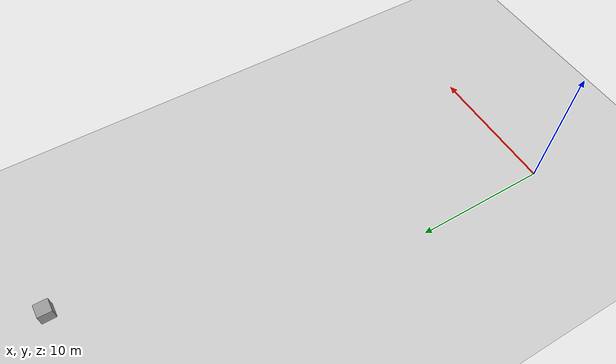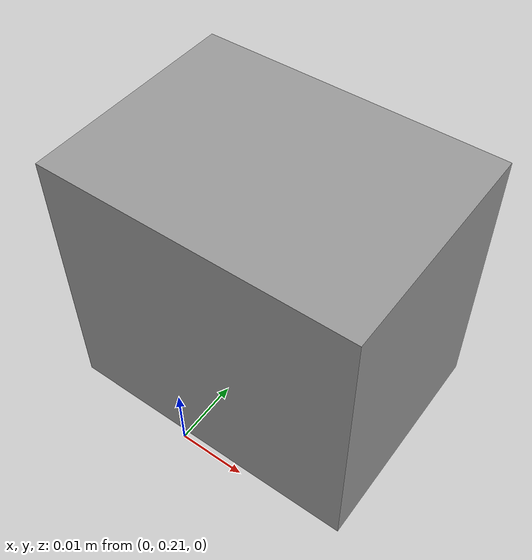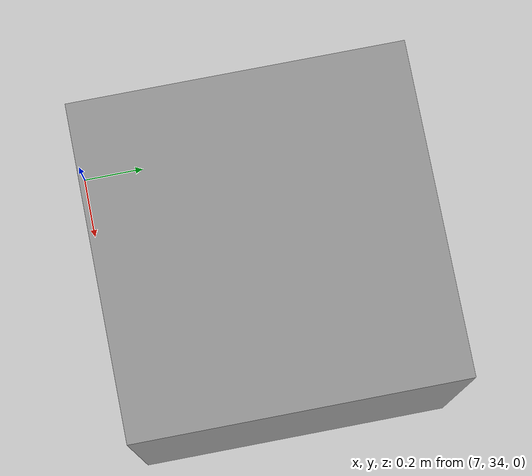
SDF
<sdf version="1.6">
 <world name="empty">
  <model name="ground_plane">
   <static>1</static>
   <link name="link">
    <collision name="collision">
     <geometry><plane><normal>0 0 1</normal><size>100 100</size></plane></geometry>
     <surface>
      <contact><collide_bitmask>65535</collide_bitmask></contact>
      <friction><ode><mu>100</mu><mu2>50</mu2></ode></friction>
     </surface>
    </collision>
    <visual name="visual">
     <cast_shadows>0</cast_shadows>
     <geometry><plane><normal>0 0 1</normal><size>100 100</size></plane></geometry>
     <material>
      <script><uri>file://media/materials/scripts/gazebo.material</uri><name>Gazebo/Grey</name></script>
     </material>
    </visual>
   </link>
  </model>
  <light name="sun" type="directional">
   <pose>0 0 10 0 -0 0</pose>
   <diffuse>0.8 0.8 0.8 1</diffuse>
   <specular>0.2 0.2 0.2 1</specular>
   <attenuation>
    <range>1000</range>
    <constant>0.9</constant>
    <linear>0.01</linear>
    <quadratic>0.001</quadratic>
   </attenuation>
   <direction>-0.5 0.1 -0.9</direction>
  </light>
  <gravity>0 0 -9.8</gravity>
  <magnetic_field>6e-06 2.3e-05 -4.2e-05</magnetic_field>
  <atmosphere type="adiabatic"/>
  <physics name="default_physics" default="0" type="ode">
   <max_step_size>0.001</max_step_size>
   <real_time_factor>1</real_time_factor>
   <real_time_update_rate>1000</real_time_update_rate>
  </physics>
  <scene><ambient>0.4 0.4 0.4 1</ambient><background>0.7 0.7 0.7 1</background><shadows>1</shadows></scene>
  <audio><device>default</device></audio>
  <spherical_coordinates>
   <surface_model>EARTH_WGS84</surface_model>
   <latitude_deg>0</latitude_deg>
   <longitude_deg>0</longitude_deg>
   <elevation>0</elevation>
   <heading_deg>0</heading_deg>
  </spherical_coordinates>
  <model name="unit_box">
   <pose>7.49172 34.5369 0.499995 0 -1e-05 0</pose>
   <link name="link">
    <inertial>
     <mass>1</mass>
     <inertia>
      <ixx>0.166667</ixx>
      <ixy>0</ixy>
      <ixz>0</ixz>
      <iyy>0.166667</iyy>
      <iyz>0</iyz>
      <izz>0.166667</izz>
     </inertia>
    </inertial>
    <collision name="collision"><geometry><box><size>1 1 1</size></box></geometry></collision>
    <visual name="visual">
     <geometry><box><size>1 1 1</size></box></geometry>
     <material>
      <script><name>Gazebo/Grey</name><uri>file://media/materials/scripts/gazebo.material</uri></script>
     </material>
    </visual>
   </link>
  </model>
  <model name="unit_box_0">
   <pose>0.003239 0.227318 0.020618 -2e-06 6e-06 -3e-06</pose>
   <link name="link">
    <inertial>
     <mass>1</mass>
     <inertia>
      <ixx>0.166667</ixx>
      <ixy>0</ixy>
      <ixz>0</ixz>
      <iyy>0.166667</iyy>
      <iyz>0</iyz>
      <izz>0.166667</izz>
     </inertia>
    </inertial>
    <collision name="collision">
     <geometry><box><size>0.044965 0.0329007 0.0412558</size></box></geometry>
    </collision>
    <visual name="visual">
     <geometry><box><size>0.044965 0.0329007 0.0412558</size></box></geometry>
     <material>
      <script><name>Gazebo/Grey</name><uri>file://media/materials/scripts/gazebo.material</uri></script>
     </material>
    </visual>
   </link>
  </model>
 </world>
</sdf>
